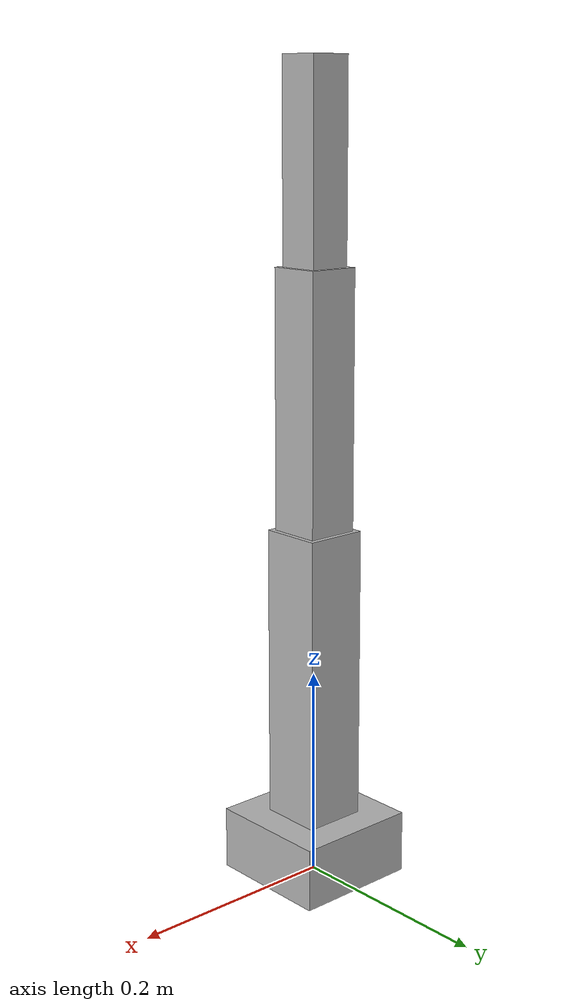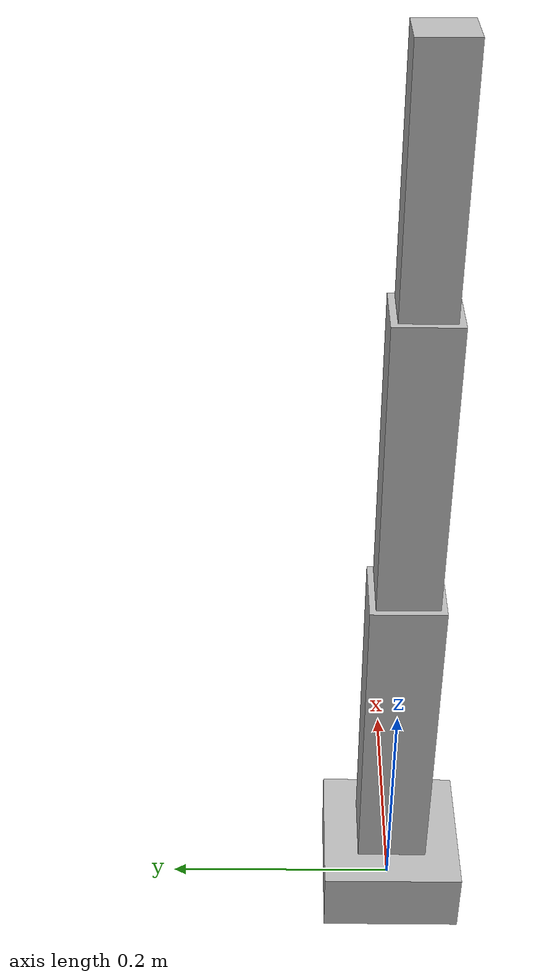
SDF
<?xml version="1.0"?>
<sdf version="1.9">
  <model name="arm3">
    <link name="base">
      <pose>0 0 0.03 0 0 0</pose>
      <inertial><mass>2.3328</mass>
        <inertia><ixx>0.0034992</ixx><ixy>0</ixy><ixz>0</ixz>
        <iyy>0.0034992</iyy><iyz>0</iyz><izz>0.00559872</izz></inertia>
      </inertial>
      <visual name="visual_base">
        <geometry><box><size>0.12 0.12 0.06</size></box></geometry>
      </visual>
      <collision name="collision_base">
        <geometry><box><size>0.12 0.12 0.06</size></box></geometry>
      </collision>
    </link>
    <link name="link1">
      <pose>0 0 0.2 0 0 0</pose>
      <inertial><mass>2.7216</mass>
        <inertia><ixx>0.0185976</ixx><ixy>0</ixy><ixz>0</ixz>
        <iyy>0.0185976</iyy><iyz>0</iyz><izz>0.00163296</izz></inertia>
      </inertial>
      <visual name="visual_link1">
        <geometry><box><size>0.06 0.06 0.28</size></box></geometry>
      </visual>
      <collision name="collision_link1">
        <geometry><box><size>0.06 0.06 0.28</size></box></geometry>
      </collision>
    </link>
    <link name="link2">
      <pose>0 0 0.46 0 0 0</pose>
      <inertial><mass>1.62</mass>
        <inertia><ixx>0.0081135</ixx><ixy>0</ixy><ixz>0</ixz>
        <iyy>0.0081135</iyy><iyz>0</iyz><izz>0.000675</izz></inertia>
      </inertial>
      <visual name="visual_link2">
        <geometry><box><size>0.05 0.05 0.24</size></box></geometry>
      </visual>
      <collision name="collision_link2">
        <geometry><box><size>0.05 0.05 0.24</size></box></geometry>
      </collision>
    </link>
    <link name="link3">
      <pose>0 0 0.67 0 0 0</pose>
      <inertial><mass>0.7776</mass>
        <inertia><ixx>0.0022032</ixx><ixy>0</ixy><ixz>0</ixz>
        <iyy>0.0022032</iyy><iyz>0</iyz><izz>0.00020736</izz></inertia>
      </inertial>
      <visual name="visual_link3">
        <geometry><box><size>0.04 0.04 0.18</size></box></geometry>
      </visual>
      <collision name="collision_link3">
        <geometry><box><size>0.04 0.04 0.18</size></box></geometry>
      </collision>
    </link>
    <joint name="j_link1" type="revolute">
      <parent>base</parent>
      <child>link1</child>
      <axis><xyz>0 0 1</xyz>
        <limit><lower>-2.967</lower><upper>2.967</upper></limit>
        <dynamics><damping>0.12</damping><friction>0.02</friction></dynamics>
      </axis>
    </joint>
    <joint name="j_link2" type="revolute">
      <parent>link1</parent>
      <child>link2</child>
      <axis><xyz>0 1 0</xyz>
        <limit><lower>-1.745</lower><upper>1.745</upper></limit>
        <dynamics><damping>0.1</damping><friction>0.02</friction></dynamics>
      </axis>
    </joint>
    <joint name="j_link3" type="revolute">
      <parent>link2</parent>
      <child>link3</child>
      <axis><xyz>0 1 0</xyz>
        <limit><lower>-2.443</lower><upper>2.443</upper></limit>
        <dynamics><damping>0.08</damping><friction>0.02</friction></dynamics>
      </axis>
    </joint>
  </model>
</sdf>
